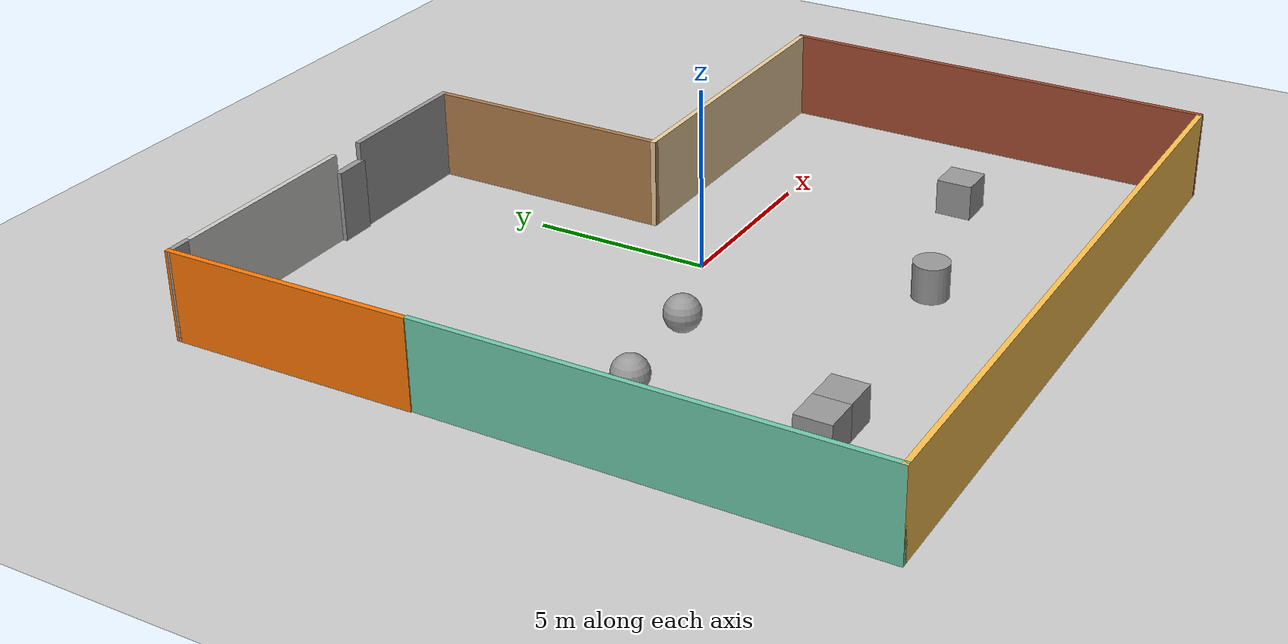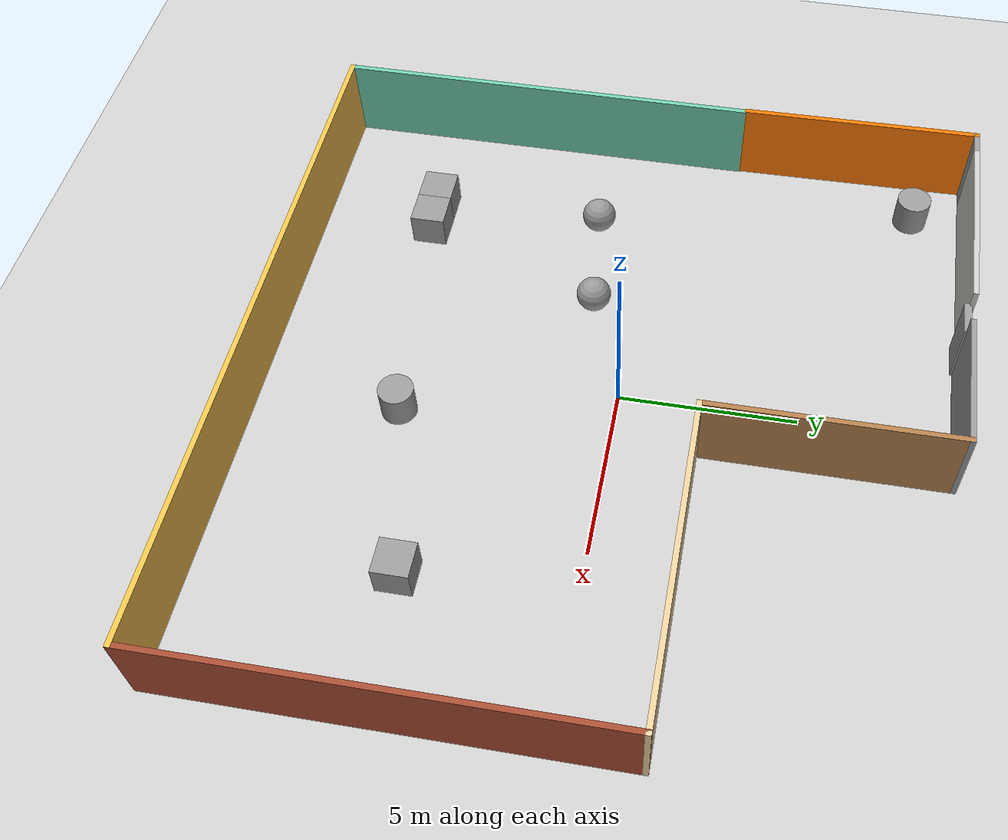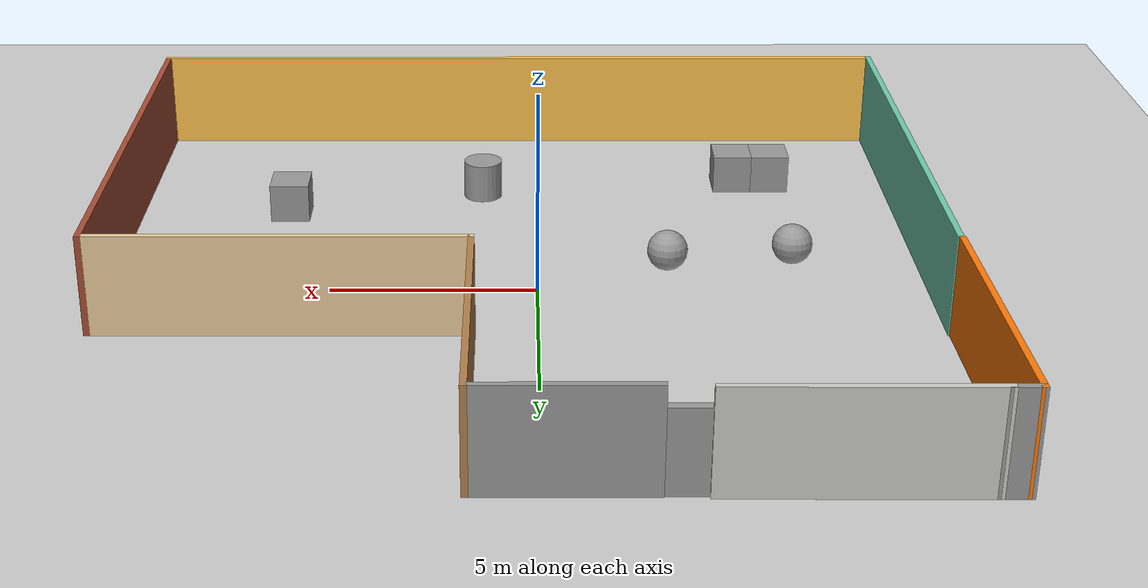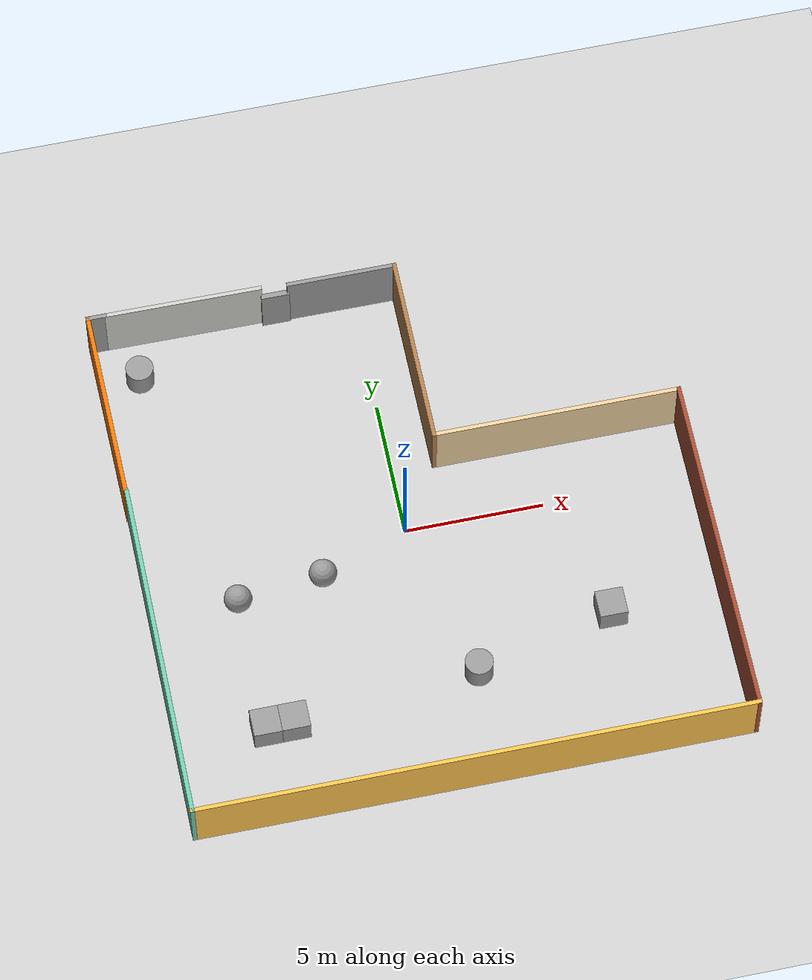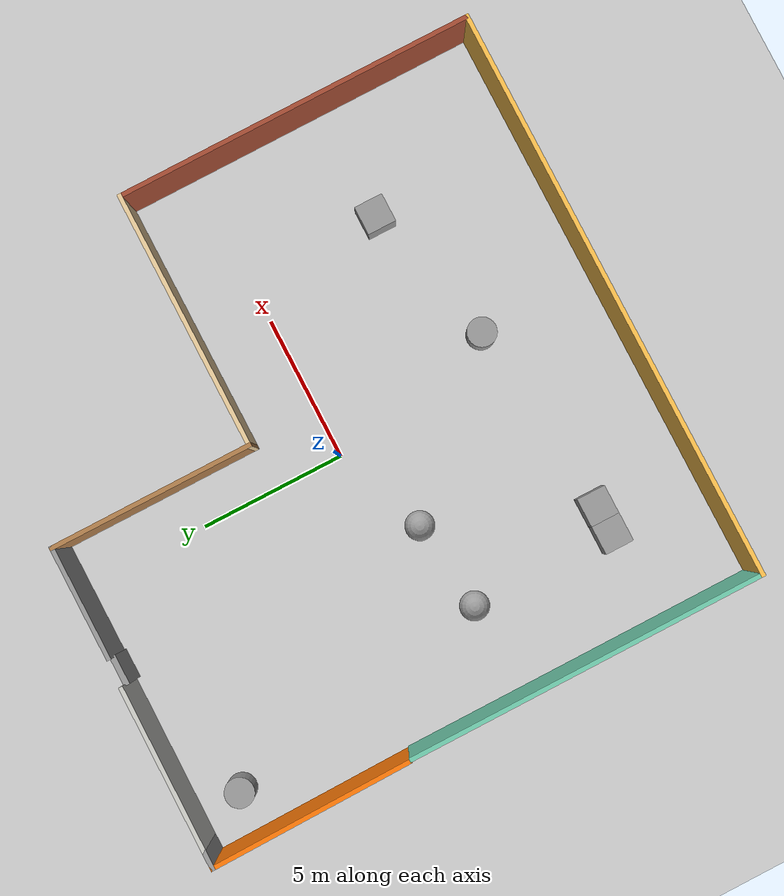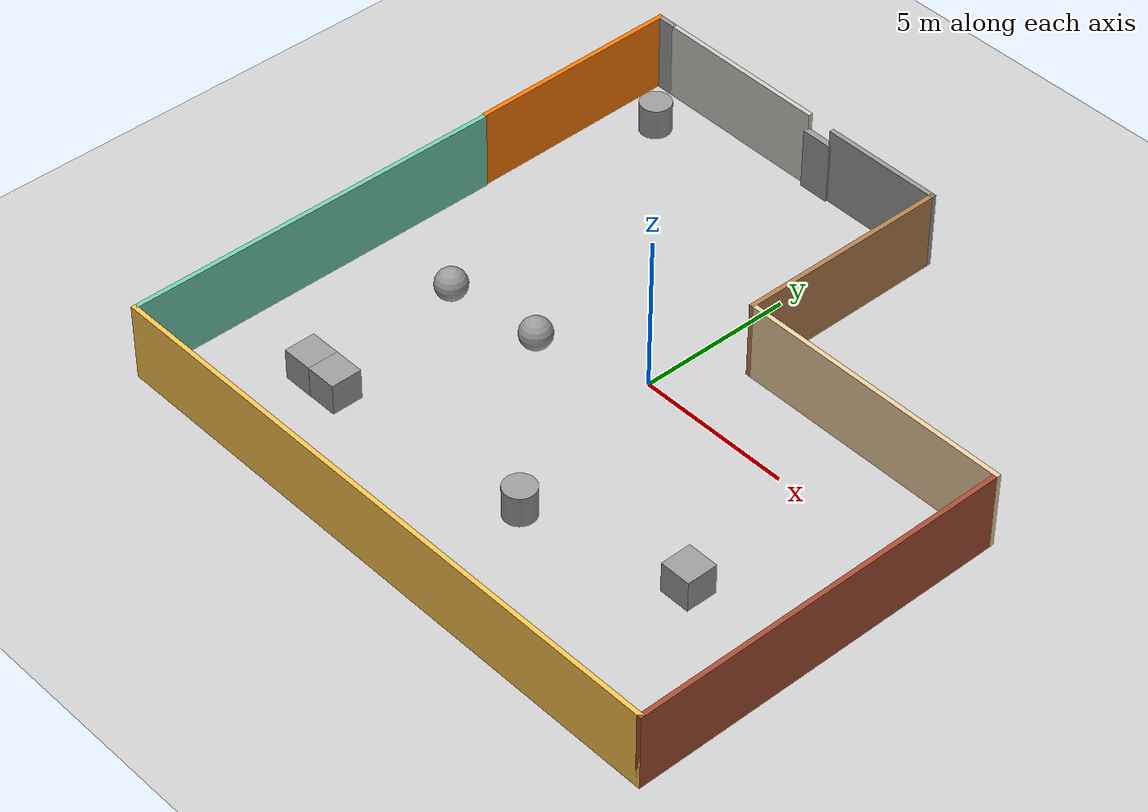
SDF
<sdf version="1.7">
 <world name="default">
  <light name="sun" type="directional">
   <pose>0 0 10 0 -0 0</pose>
   <diffuse>0.8 0.8 0.8 1</diffuse>
   <specular>0.2 0.2 0.2 1</specular>
   <attenuation>
    <range>1000</range>
    <constant>0.9</constant>
    <linear>0.01</linear>
    <quadratic>0.001</quadratic>
   </attenuation>
   <direction>-0.5 0.1 -0.9</direction>
   <spot><inner_angle>0</inner_angle><outer_angle>0</outer_angle><falloff>0</falloff></spot>
  </light>
  <model name="ground_plane">
   <static>1</static>
   <link name="link">
    <collision name="collision">
     <geometry><plane><normal>0 0 1</normal><size>100 100</size></plane></geometry>
     <surface>
      <contact><collide_bitmask>65535</collide_bitmask></contact>
      <friction><ode><mu>100</mu><mu2>50</mu2></ode></friction>
     </surface>
    </collision>
    <visual name="visual">
     <cast_shadows>0</cast_shadows>
     <geometry><plane><normal>0 0 1</normal><size>100 100</size></plane></geometry>
     <material>
      <script><uri>file://media/materials/scripts/gazebo.material</uri><name>Gazebo/Grey</name></script>
     </material>
    </visual>
   </link>
  </model>
  <gravity>0 0 -9.8</gravity>
  <magnetic_field>6e-06 2.3e-05 -4.2e-05</magnetic_field>
  <atmosphere type="adiabatic"/>
  <physics type="ode">
   <max_step_size>0.001</max_step_size>
   <real_time_factor>1</real_time_factor>
   <real_time_update_rate>1000</real_time_update_rate>
  </physics>
  <scene><ambient>0.4 0.4 0.4 1</ambient><background>0.7 0.7 0.7 1</background><shadows>1</shadows></scene>
  <spherical_coordinates>
   <surface_model>EARTH_WGS84</surface_model>
   <latitude_deg>0</latitude_deg>
   <longitude_deg>0</longitude_deg>
   <elevation>0</elevation>
   <heading_deg>0</heading_deg>
  </spherical_coordinates>
  <model name="test_model">
   <pose>0.391128 -0.334429 0 0 -0 0</pose>
   <link name="Door_2">
    <collision name="Door_2_Collision">
     <geometry><box><size>1.022 0.2 2</size></box></geometry>
     <pose>0 0 1 0 -0 0</pose>
    </collision>
    <visual name="Door_2_Visual">
     <pose>0 0 1 0 -0 0</pose>
     <geometry><box><size>1.022 0.2 2</size></box></geometry>
     <material>
      <script><uri>file://media/materials/scripts/gazebo.material</uri><name>Gazebo/Grey</name></script>
     </material>
    </visual>
    <pose>-3.23335 9.55537 0 0 -0 0</pose>
   </link>
   <link name="Wall_26">
    <collision name="Wall_26_Collision">
     <geometry><box><size>12.5 0.15 2.5</size></box></geometry>
     <pose>0 0 1.25 0 -0 0</pose>
    </collision>
    <visual name="Wall_26_Visual">
     <pose>0 0 1.25 0 -0 0</pose>
     <geometry><box><size>12.5 0.15 2.5</size></box></geometry>
     <material>
      <script><uri>file://media/materials/scripts/gazebo.material</uri><name>Gazebo/Grey</name></script>
      <ambient>0.435294 0.796078 0.67451 1</ambient>
     </material>
     <meta><layer>0</layer></meta>
    </visual>
    <pose>-9.86569 -3.51348 0 0 -0 -1.5708</pose>
   </link>
   <link name="Wall_27">
    <collision name="Wall_27_Collision">
     <geometry><box><size>20 0.15 2.5</size></box></geometry>
     <pose>0 0 1.25 0 -0 0</pose>
    </collision>
    <visual name="Wall_27_Visual">
     <pose>0 0 1.25 0 -0 0</pose>
     <geometry><box><size>20 0.15 2.5</size></box></geometry>
     <material>
      <script><uri>file://media/materials/scripts/gazebo.material</uri><name>Gazebo/Grey</name></script>
      <ambient>1 0.764706 0.305882 1</ambient>
     </material>
     <meta><layer>0</layer></meta>
    </visual>
    <pose>0.05931 -9.68848 0 0 -0 0</pose>
   </link>
   <link name="Wall_28">
    <collision name="Wall_28_Collision">
     <geometry><box><size>12.5 0.15 2.5</size></box></geometry>
     <pose>0 0 1.25 0 -0 0</pose>
    </collision>
    <visual name="Wall_28_Visual">
     <pose>0 0 1.25 0 -0 0</pose>
     <geometry><box><size>12.5 0.15 2.5</size></box></geometry>
     <material>
      <script><uri>file://media/materials/scripts/gazebo.material</uri><name>Gazebo/Bricks</name></script>
      <ambient>0.996078 0.47451 0.0196078 1</ambient>
     </material>
     <meta><layer>0</layer></meta>
    </visual>
    <pose>9.98431 -3.51348 0 0 -0 1.5708</pose>
   </link>
   <link name="Wall_29">
    <collision name="Wall_29_Collision">
     <geometry><box><size>9 0.15 2.5</size></box></geometry>
     <pose>0 0 1.25 0 -0 0</pose>
    </collision>
    <visual name="Wall_29_Visual">
     <pose>0 0 1.25 0 -0 0</pose>
     <geometry><box><size>9 0.15 2.5</size></box></geometry>
     <material>
      <script><uri>file://media/materials/scripts/gazebo.material</uri><name>Gazebo/Grey</name></script>
      <ambient>0.921569 0.807843 0.615686 1</ambient>
     </material>
     <meta><layer>0</layer></meta>
    </visual>
    <pose>5.55931 2.66152 0 0 -0 3.14159</pose>
   </link>
   <link name="Wall_30">
    <collision name="Wall_30_Collision">
     <geometry><box><size>7.08137 0.15 2.5</size></box></geometry>
     <pose>0 0 1.25 0 -0 0</pose>
    </collision>
    <visual name="Wall_30_Visual">
     <pose>0 0 1.25 0 -0 0</pose>
     <geometry><box><size>7.08137 0.15 2.5</size></box></geometry>
     <material>
      <script><uri>file://media/materials/scripts/gazebo.material</uri><name>Gazebo/Wood</name></script>
      <ambient>1 1 1 1</ambient>
     </material>
     <meta><layer>0</layer></meta>
    </visual>
    <pose>1.13431 6.12721 0 0 -0 1.5708</pose>
   </link>
   <link name="Wall_34">
    <collision name="Wall_34_Collision">
     <geometry><box><size>4 0.15 2.5</size></box></geometry>
     <pose>0 0 1.25 0 -0 0</pose>
    </collision>
    <visual name="Wall_34_Visual">
     <pose>0 0 1.25 0 -0 0</pose>
     <geometry><box><size>4 0.15 2.5</size></box></geometry>
     <material>
      <script><uri>file://media/materials/scripts/gazebo.material</uri><name>Gazebo/Grey</name></script>
      <ambient>1 1 1 1</ambient>
     </material>
     <meta><layer>0</layer></meta>
    </visual>
    <pose>-0.79069 9.59289 0 0 -0 3.14159</pose>
   </link>
   <link name="Wall_36">
    <collision name="Wall_36_Collision">
     <geometry><box><size>5.76696 0.15 2.5</size></box></geometry>
     <pose>0 0 1.25 0 -0 0</pose>
    </collision>
    <visual name="Wall_36_Visual">
     <pose>0 0 1.25 0 -0 0</pose>
     <geometry><box><size>5.76696 0.15 2.5</size></box></geometry>
     <material>
      <script><uri>file://media/materials/scripts/gazebo.material</uri><name>Gazebo/CeilingTiled</name></script>
      <ambient>1 0.764706 0.305882 1</ambient>
     </material>
     <meta><layer>0</layer></meta>
    </visual>
    <pose>-6.57496 9.67463 0 0 -0 3.13698</pose>
   </link>
   <link name="Wall_37">
    <collision name="Wall_37_Collision">
     <geometry><box><size>0.75 0.15 2.5</size></box></geometry>
     <pose>0 0 1.25 0 -0 0</pose>
    </collision>
    <visual name="Wall_37_Visual">
     <pose>0 0 1.25 0 -0 0</pose>
     <geometry><box><size>0.75 0.15 2.5</size></box></geometry>
     <material>
      <script><uri>file://media/materials/scripts/gazebo.material</uri><name>Gazebo/Grey</name></script>
      <ambient>1 1 1 1</ambient>
     </material>
     <meta><layer>0</layer></meta>
    </visual>
    <pose>-9.6834 9.68758 0 0 -0 3.14159</pose>
   </link>
   <link name="Wall_38">
    <collision name="Wall_38_Collision">
     <geometry><box><size>7.05682 0.15 2.5</size></box></geometry>
     <pose>0 0 1.25 0 -0 0</pose>
    </collision>
    <visual name="Wall_38_Visual">
     <pose>0 0 1.25 0 -0 0</pose>
     <geometry><box><size>7.05682 0.15 2.5</size></box></geometry>
     <material>
      <script><uri>file://media/materials/scripts/gazebo.material</uri><name>Gazebo/Grey</name></script>
      <ambient>0.996078 0.47451 0.0196078 1</ambient>
     </material>
     <meta><layer>0</layer></meta>
    </visual>
    <pose>-9.9414 6.23442 0 0 -0 -1.55863</pose>
   </link>
   <static>1</static>
  </model>
  <model name="unit_box">
   <pose>6.40876 -4.63335 0.499995 0 1e-05 0</pose>
   <link name="link">
    <inertial>
     <mass>1</mass>
     <inertia>
      <ixx>0.166667</ixx>
      <ixy>0</ixy>
      <ixz>0</ixz>
      <iyy>0.166667</iyy>
      <iyz>0</iyz>
      <izz>0.166667</izz>
     </inertia>
    </inertial>
    <collision name="collision"><geometry><box><size>1 1 1</size></box></geometry></collision>
    <visual name="visual">
     <geometry><box><size>1 1 1</size></box></geometry>
     <material>
      <script><name>Gazebo/Grey</name><uri>file://media/materials/scripts/gazebo.material</uri></script>
     </material>
    </visual>
   </link>
  </model>
  <model name="unit_cylinder">
   <pose>1.4072 -5.9264 0.499998 3e-06 -4e-06 0</pose>
   <link name="link">
    <inertial>
     <mass>1</mass>
     <inertia><ixx>0.145833</ixx><ixy>0</ixy><ixz>0</ixz><iyy>0.145833</iyy><iyz>0</iyz><izz>0.125</izz></inertia>
    </inertial>
    <collision name="collision">
     <geometry><cylinder><radius>0.5</radius><length>1</length></cylinder></geometry>
    </collision>
    <visual name="visual">
     <geometry><cylinder><radius>0.5</radius><length>1</length></cylinder></geometry>
     <material>
      <script><name>Gazebo/Grey</name><uri>file://media/materials/scripts/gazebo.material</uri></script>
     </material>
    </visual>
   </link>
  </model>
  <model name="unit_sphere">
   <pose>-3.20775 -1.2474 0.5 0 -0 0</pose>
   <link name="link">
    <inertial>
     <mass>1</mass>
     <inertia><ixx>0.1</ixx><ixy>0</ixy><ixz>0</ixz><iyy>0.1</iyy><iyz>0</iyz><izz>0.1</izz></inertia>
    </inertial>
    <collision name="collision"><geometry><sphere><radius>0.5</radius></sphere></geometry></collision>
    <visual name="visual">
     <geometry><sphere><radius>0.5</radius></sphere></geometry>
     <material>
      <script><name>Gazebo/Grey</name><uri>file://media/materials/scripts/gazebo.material</uri></script>
     </material>
    </visual>
   </link>
  </model>
  <model name="unit_box_0">
   <pose>-6.29887 -6.62127 0.5 0 -0 -4e-06</pose>
   <link name="link">
    <inertial>
     <mass>1</mass>
     <inertia>
      <ixx>0.166667</ixx>
      <ixy>0</ixy>
      <ixz>0</ixz>
      <iyy>0.166667</iyy>
      <iyz>0</iyz>
      <izz>0.166667</izz>
     </inertia>
    </inertial>
    <collision name="collision"><geometry><box><size>1 1 1</size></box></geometry></collision>
    <visual name="visual">
     <geometry><box><size>1 1 1</size></box></geometry>
     <material>
      <script><name>Gazebo/Grey</name><uri>file://media/materials/scripts/gazebo.material</uri></script>
     </material>
    </visual>
   </link>
  </model>
  <model name="unit_box_1">
   <pose>-5.29887 -6.61761 0.5 -0 -0 -3e-06</pose>
   <link name="link">
    <inertial>
     <mass>1</mass>
     <inertia>
      <ixx>0.166667</ixx>
      <ixy>0</ixy>
      <ixz>0</ixz>
      <iyy>0.166667</iyy>
      <iyz>0</iyz>
      <izz>0.166667</izz>
     </inertia>
    </inertial>
    <collision name="collision"><geometry><box><size>1 1 1</size></box></geometry></collision>
    <visual name="visual">
     <geometry><box><size>1 1 1</size></box></geometry>
     <material>
      <script><name>Gazebo/Grey</name><uri>file://media/materials/scripts/gazebo.material</uri></script>
     </material>
    </visual>
   </link>
  </model>
  <model name="unit_cylinder_0">
   <pose>-8.08474 7.8125 0.499993 -3e-06 -4e-06 -0</pose>
   <link name="link">
    <inertial>
     <mass>1</mass>
     <inertia><ixx>0.145833</ixx><ixy>0</ixy><ixz>0</ixz><iyy>0.145833</iyy><iyz>0</iyz><izz>0.125</izz></inertia>
    </inertial>
    <collision name="collision">
     <geometry><cylinder><radius>0.5</radius><length>1</length></cylinder></geometry>
    </collision>
    <visual name="visual">
     <geometry><cylinder><radius>0.5</radius><length>1</length></cylinder></geometry>
     <material>
      <script><name>Gazebo/Grey</name><uri>file://media/materials/scripts/gazebo.material</uri></script>
     </material>
    </visual>
   </link>
  </model>
  <model name="unit_sphere_0">
   <pose>-6.32543 -1.61683 0.5 0 -0 0</pose>
   <link name="link">
    <inertial>
     <mass>1</mass>
     <inertia><ixx>0.1</ixx><ixy>0</ixy><ixz>0</ixz><iyy>0.1</iyy><iyz>0</iyz><izz>0.1</izz></inertia>
    </inertial>
    <collision name="collision"><geometry><sphere><radius>0.5</radius></sphere></geometry></collision>
    <visual name="visual">
     <geometry><sphere><radius>0.5</radius></sphere></geometry>
     <material>
      <script><name>Gazebo/Grey</name><uri>file://media/materials/scripts/gazebo.material</uri></script>
     </material>
    </visual>
   </link>
  </model>
 </world>
</sdf>
